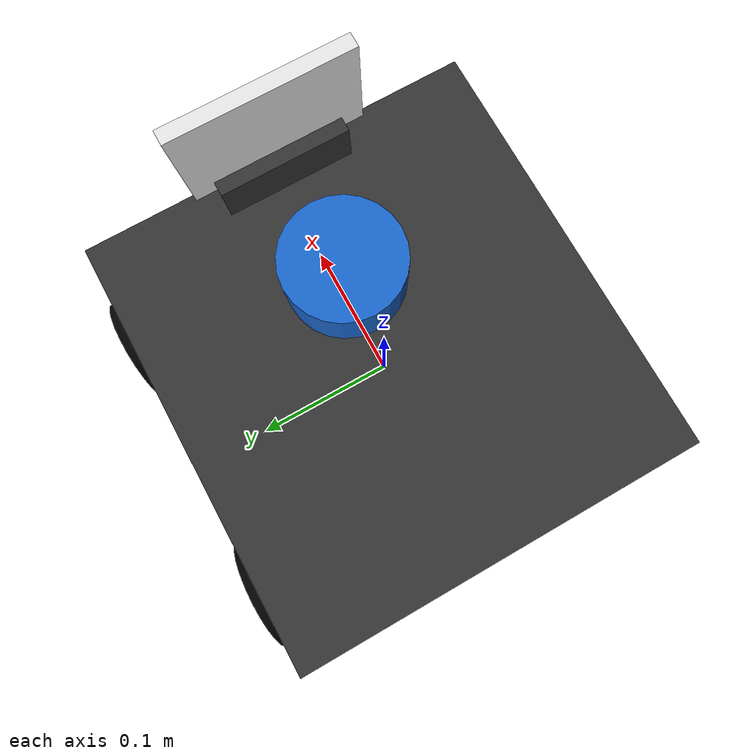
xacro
<?xml version="1.0"?>
<robot name="arjuna" xmlns:xacro="http://www.ros.org/wiki/xacro">

  <!-- ===================== PROPERTIES ===================== -->
  <!-- From odometry code: WHEEL_RADIUS=0.04, WHEEL_BASE=0.28 -->
  <xacro:property name="wheel_radius"   value="0.04"/>
  <xacro:property name="wheel_width"    value="0.03"/>
  <xacro:property name="wheel_base"     value="0.28"/>
  <xacro:property name="chassis_length" value="0.30"/>
  <xacro:property name="chassis_width"  value="0.28"/>
  <xacro:property name="chassis_height" value="0.08"/>
  <xacro:property name="caster_radius"  value="0.02"/>

  <!-- ===================== MATERIALS ===================== -->
  <material name="dark_gray"><color rgba="0.2 0.2 0.2 1.0"/></material>
  <material name="black"><color rgba="0.0 0.0 0.0 1.0"/></material>
  <material name="blue"><color rgba="0.1 0.4 0.8 1.0"/></material>
  <material name="white"><color rgba="0.9 0.9 0.9 1.0"/></material>

  <!-- ===================== BASE FOOTPRINT ===================== -->
  <link name="base_footprint"/>

  <joint name="base_footprint_joint" type="fixed">
    <parent link="base_footprint"/>
    <child link="base_link"/>
    <origin xyz="0 0 ${wheel_radius}" rpy="0 0 0"/>
  </joint>

  <!-- ===================== BASE LINK (CHASSIS) ===================== -->
  <link name="base_link">
    <visual>
      <geometry>
        <box size="${chassis_length} ${chassis_width} ${chassis_height}"/>
      </geometry>
      <material name="dark_gray"/>
    </visual>
    <collision>
      <geometry>
        <box size="${chassis_length} ${chassis_width} ${chassis_height}"/>
      </geometry>
    </collision>
    <inertial>
      <mass value="2.0"/>
      <inertia ixx="0.0141" ixy="0" ixz="0"
               iyy="0.0166" iyz="0"
               izz="0.0291"/>
    </inertial>
  </link>

  <!-- ===================== WHEELS (QUAD MOTORS) ===================== -->
  <!-- Motor 1 = Front Left, Motor 2 = Front Right -->
  <!-- Motor 3 = Rear Left,  Motor 4 = Rear Right  -->
  <!-- (From code: motors 1&4 = left side, 2&3 = right side) -->

  <xacro:macro name="wheel" params="name x y mimic_joint">
    <link name="${name}_wheel">
      <visual>
        <geometry>
          <cylinder radius="${wheel_radius}" length="${wheel_width}"/>
        </geometry>
        <origin rpy="${pi/2} 0 0"/>
        <material name="black"/>
      </visual>
      <collision>
        <geometry>
          <cylinder radius="${wheel_radius}" length="${wheel_width}"/>
        </geometry>
        <origin rpy="${pi/2} 0 0"/>
      </collision>
      <inertial>
        <mass value="0.3"/>
        <inertia ixx="0.000120" ixy="0" ixz="0"
                 iyy="0.000120" iyz="0"
                 izz="0.000240"/>
      </inertial>
    </link>
    <joint name="${name}_wheel_joint" type="continuous">
      <parent link="base_link"/>
      <child link="${name}_wheel"/>
      <origin xyz="${x} ${y} ${-chassis_height/2}" rpy="0 0 0"/>
      <axis xyz="0 1 0"/>
    </joint>
  </xacro:macro>

  <xacro:wheel name="front_left"  x=" 0.10" y=" ${wheel_base/2}" mimic_joint="left"/>
  <xacro:wheel name="rear_left"   x="-0.10" y=" ${wheel_base/2}" mimic_joint="left"/>
  <xacro:wheel name="front_right" x=" 0.10" y="-${wheel_base/2}" mimic_joint="right"/>
  <xacro:wheel name="rear_right"  x="-0.10" y="-${wheel_base/2}" mimic_joint="right"/>

  <!-- ===================== CASTER WHEEL ===================== -->
  <link name="caster_wheel">
    <visual>
      <geometry><sphere radius="${caster_radius}"/></geometry>
      <material name="dark_gray"/>
    </visual>
    <collision>
      <geometry><sphere radius="${caster_radius}"/></geometry>
    </collision>
    <inertial>
      <mass value="0.05"/>
      <inertia ixx="8e-6" ixy="0" ixz="0" iyy="8e-6" iyz="0" izz="8e-6"/>
    </inertial>
  </link>
  <joint name="caster_joint" type="fixed">
    <parent link="base_link"/>
    <child link="caster_wheel"/>
    <origin xyz="-0.12 0 ${-chassis_height/2 - caster_radius + 0.005}"/>
  </joint>

  <!-- ===================== RPLIDAR C1M1 ===================== -->
  <!-- Range: 0.15-12m, 10Hz, 360 degrees -->
  <link name="laser_link">
    <visual>
      <geometry>
        <cylinder radius="0.04" length="0.04"/>
      </geometry>
      <material name="blue"/>
    </visual>
    <collision>
      <geometry>
        <cylinder radius="0.04" length="0.04"/>
      </geometry>
    </collision>
    <inertial>
      <mass value="0.1"/>
      <inertia ixx="1e-5" ixy="0" ixz="0" iyy="1e-5" iyz="0" izz="1e-5"/>
    </inertial>
  </link>
  <joint name="laser_joint" type="fixed">
    <parent link="base_link"/>
    <child link="laser_link"/>
    <origin xyz="0.05 0 ${chassis_height/2 + 0.02}" rpy="0 0 0"/>
  </joint>

  <!-- ===================== OAK-D LITE CAMERA ===================== -->
  <!-- Publishes: /frames (Image), /oak/depth_value (Float32) -->
  <link name="camera_link">
    <visual>
      <geometry>
        <box size="0.03 0.09 0.03"/>
      </geometry>
      <material name="dark_gray"/>
    </visual>
    <collision>
      <geometry>
        <box size="0.03 0.09 0.03"/>
      </geometry>
    </collision>
    <inertial>
      <mass value="0.08"/>
      <inertia ixx="1e-5" ixy="0" ixz="0" iyy="1e-5" iyz="0" izz="1e-5"/>
    </inertial>
  </link>
  <joint name="camera_joint" type="fixed">
    <parent link="base_link"/>
    <child link="camera_link"/>
    <origin xyz="0.14 0 ${chassis_height/2 + 0.015}" rpy="0 0 0"/>
  </joint>

  <!-- Camera optical frame (ROS convention: z forward, x right, y down) -->
  <link name="camera_optical_link"/>
  <joint name="camera_optical_joint" type="fixed">
    <parent link="camera_link"/>
    <child link="camera_optical_link"/>
    <origin xyz="0 0 0" rpy="${-pi/2} 0 ${-pi/2}"/>
  </joint>

  <!-- ===================== DISPLAY / SCREEN ===================== -->
  <link name="display_link">
    <visual>
      <geometry>
        <box size="0.01 0.12 0.07"/>
      </geometry>
      <material name="white"/>
    </visual>
    <inertial>
      <mass value="0.05"/>
      <inertia ixx="1e-5" ixy="0" ixz="0" iyy="1e-5" iyz="0" izz="1e-5"/>
    </inertial>
  </link>
  <joint name="display_joint" type="fixed">
    <parent link="base_link"/>
    <child link="display_link"/>
    <origin xyz="0.14 0 ${chassis_height/2 + 0.055}" rpy="0 0 0"/>
  </joint>

  <!-- ===================== GAZEBO PLUGINS ===================== -->

  <!-- Differential Drive Controller -->
  <!-- Uses left side (motors 1&4) and right side (motors 2&3) -->
  <gazebo>
    <plugin name="differential_drive_controller"
            filename="libgazebo_ros_diff_drive.so">
      <updateRate>30</updateRate>
      <leftJoint>front_left_wheel_joint</leftJoint>
      <rightJoint>front_right_wheel_joint</rightJoint>
      <wheelSeparation>${wheel_base}</wheelSeparation>
      <wheelDiameter>${2*wheel_radius}</wheelDiameter>
      <robotBaseFrame>base_footprint</robotBaseFrame>
      <commandTopic>/cmd_vel</commandTopic>
      <odometryTopic>/odom</odometryTopic>
      <odometryFrame>odom</odometryFrame>
      <publishWheelTF>true</publishWheelTF>
      <publishOdomTF>true</publishOdomTF>
      <publishWheelJointState>true</publishWheelJointState>
      <!-- Rear wheels mimic front via plugin -->
      <legacyMode>false</legacyMode>
    </plugin>
  </gazebo>

  <!-- RPLidar C1M1: 360deg, 0.15-12m, 10Hz -->
  <gazebo reference="laser_link">
    <sensor type="ray" name="rplidar_sensor">
      <pose>0 0 0 0 0 0</pose>
      <visualize>true</visualize>
      <update_rate>10</update_rate>
      <ray>
        <scan>
          <horizontal>
            <samples>720</samples>
            <resolution>1</resolution>
            <min_angle>-3.14159265</min_angle>
            <max_angle>3.14159265</max_angle>
          </horizontal>
        </scan>
        <range>
          <min>0.15</min>
          <max>12.0</max>
          <resolution>0.01</resolution>
        </range>
        <noise>
          <type>gaussian</type>
          <mean>0.0</mean>
          <stddev>0.01</stddev>
        </noise>
      </ray>
      <plugin name="gazebo_ros_lidar" filename="libgazebo_ros_laser.so">
        <topicName>/scan</topicName>
        <frameName>laser_link</frameName>
      </plugin>
    </sensor>
  </gazebo>

  <!-- OAK-D Lite RGB Camera: 640x480 @ 30fps -->
  <gazebo reference="camera_link">
    <sensor type="camera" name="oak_rgb">
      <update_rate>30.0</update_rate>
      <camera name="rgb">
        <horizontal_fov>1.3962634</horizontal_fov>
        <image>
          <width>640</width>
          <height>480</height>
          <format>R8G8B8</format>
        </image>
        <clip>
          <near>0.02</near>
          <far>300</far>
        </clip>
        <noise>
          <type>gaussian</type>
          <mean>0.0</mean>
          <stddev>0.007</stddev>
        </noise>
      </camera>
      <plugin name="camera_controller" filename="libgazebo_ros_camera.so">
        <alwaysOn>true</alwaysOn>
        <updateRate>30.0</updateRate>
        <cameraName>oak</cameraName>
        <imageTopicName>/frames</imageTopicName>
        <cameraInfoTopicName>/oak/camera_info</cameraInfoTopicName>
        <frameName>camera_optical_link</frameName>
      </plugin>
    </sensor>
  </gazebo>

  <!-- OAK-D Lite Depth (Stereo Depth): range ~0.3-10m -->
  <gazebo reference="camera_link">
    <sensor type="depth" name="oak_depth">
      <update_rate>30.0</update_rate>
      <camera>
        <horizontal_fov>1.3962634</horizontal_fov>
        <image>
          <width>640</width>
          <height>480</height>
        </image>
        <clip>
          <near>0.1</near>
          <far>10.0</far>
        </clip>
      </camera>
      <plugin name="depth_controller" filename="libgazebo_ros_openni_kinect.so">
        <alwaysOn>true</alwaysOn>
        <updateRate>30.0</updateRate>
        <cameraName>oak</cameraName>
        <frameName>camera_optical_link</frameName>
        <imageTopicName>/oak/rgb/image_raw</imageTopicName>
        <depthImageTopicName>/oak/depth/image_raw</depthImageTopicName>
        <pointCloudTopicName>/oak/depth/points</pointCloudTopicName>
        <cameraInfoTopicName>/oak/depth/camera_info</cameraInfoTopicName>
        <depthImageCameraInfoTopicName>/oak/depth/camera_info</depthImageCameraInfoTopicName>
      </plugin>
    </sensor>
  </gazebo>

  <!-- IMU (BNO055) -->
  <gazebo reference="base_link">
    <gravity>true</gravity>
    <sensor name="imu_sensor" type="imu">
      <always_on>true</always_on>
      <update_rate>100</update_rate>
      <visualize>true</visualize>
      <plugin filename="libgazebo_ros_imu_sensor.so" name="imu_plugin">
        <topicName>/imu/data</topicName>
        <bodyName>base_link</bodyName>
        <updateRateHZ>100.0</updateRateHZ>
        <gaussianNoise>0.0</gaussianNoise>
        <xyzOffset>0 0 0</xyzOffset>
        <rpyOffset>0 0 0</rpyOffset>
        <frameName>base_link</frameName>
      </plugin>
    </sensor>
  </gazebo>

  <!-- Wheel encoder ticks publisher (matches real robot topics) -->
  <gazebo>
    <plugin name="joint_state_controller" filename="libgazebo_ros_joint_state_publisher.so">
      <updateRate>30</updateRate>
      <jointName>front_left_wheel_joint</jointName>
      <jointName>front_right_wheel_joint</jointName>
      <jointName>rear_left_wheel_joint</jointName>
      <jointName>rear_right_wheel_joint</jointName>
    </plugin>
  </gazebo>

</robot>
